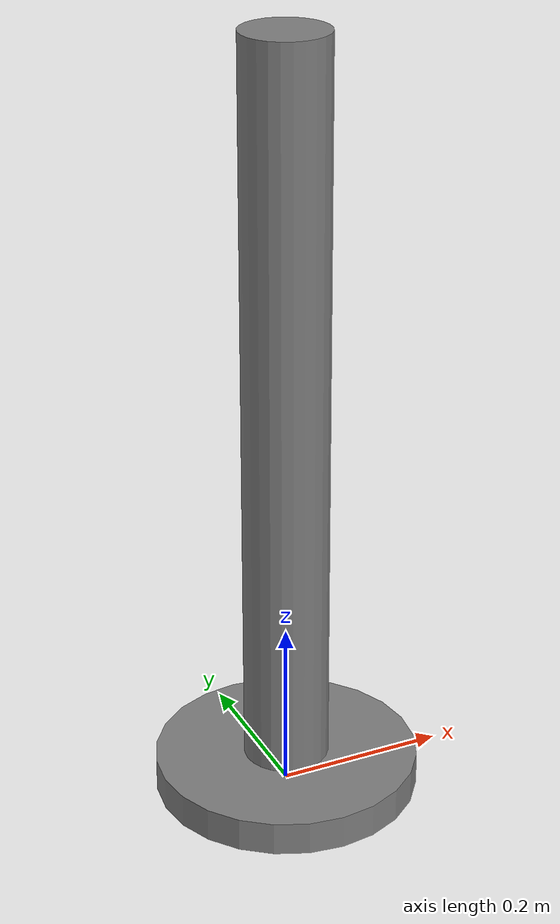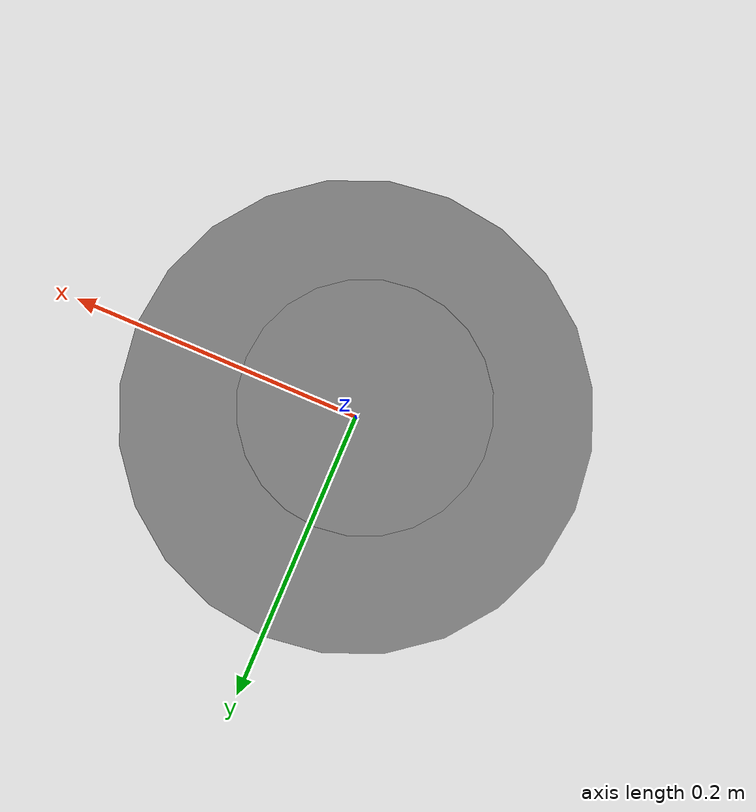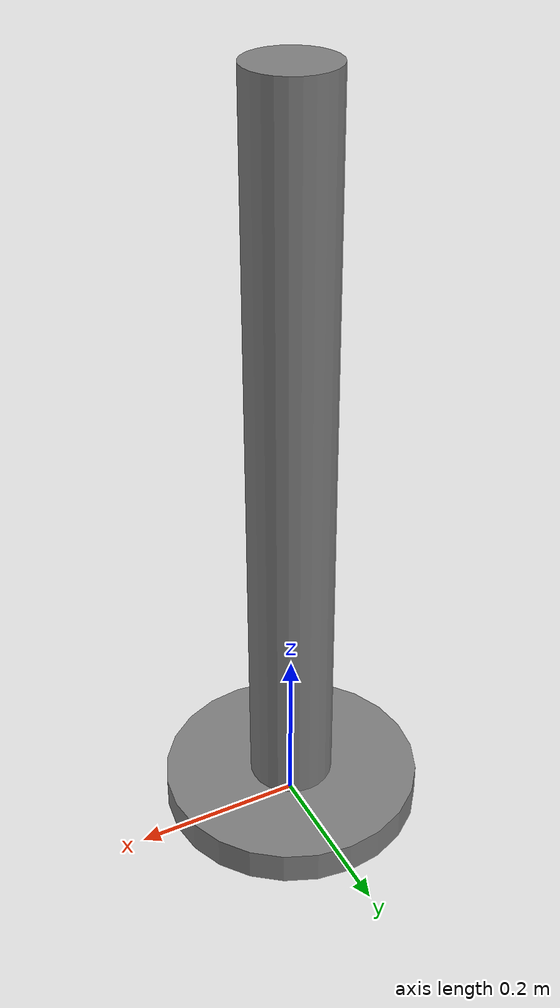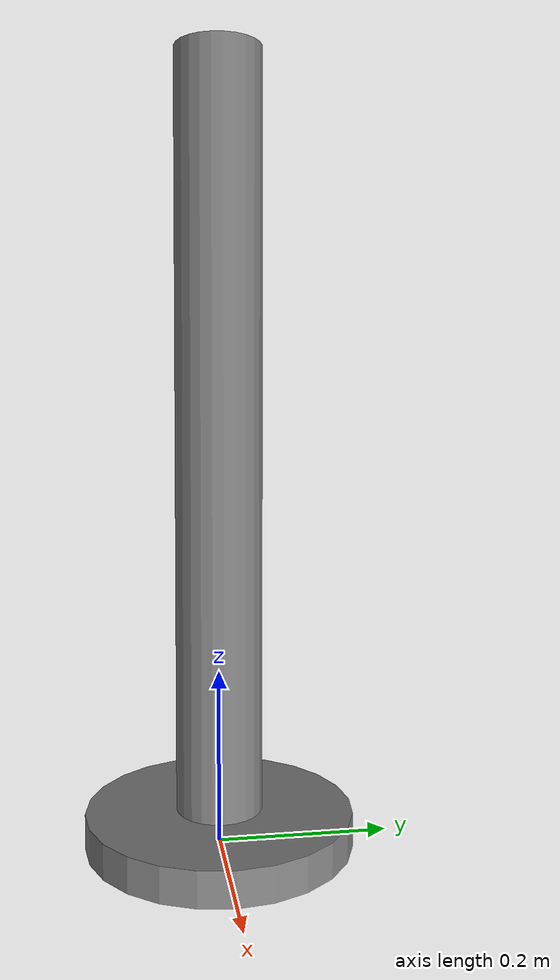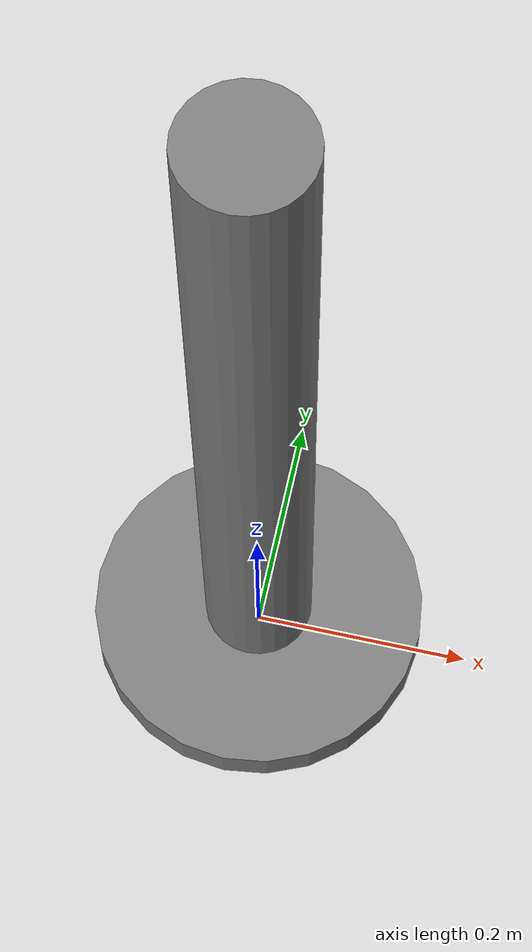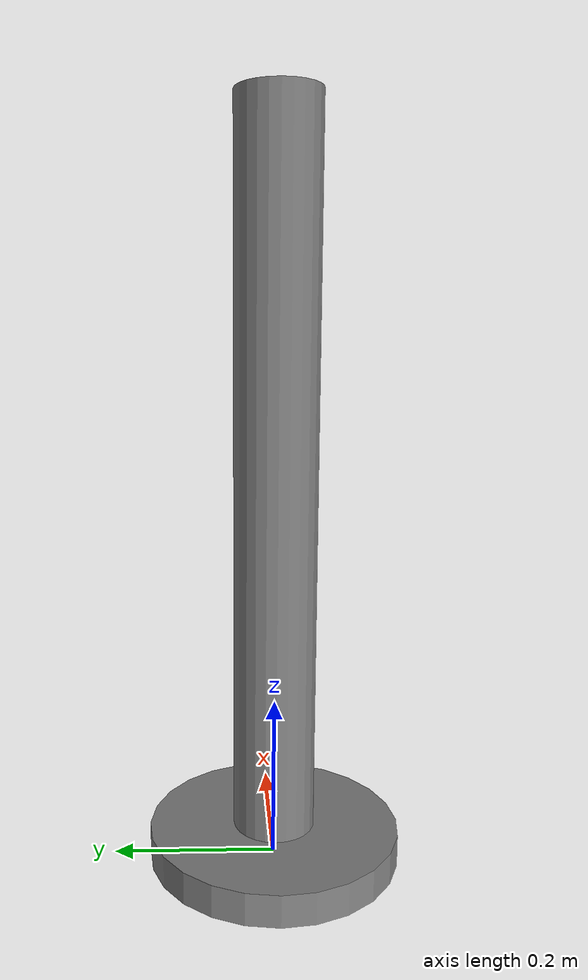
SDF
<?xml version="1.0" ?>
<sdf version='1.6'>
  <model name="barrier_with_belt_1">
    <static>true</static> <!-- Static model -->

    <!-- Base Plate_1 -->
    <link name="base1">
      <visual name="base1_visual">
        <geometry>
          <cylinder>
            <radius>0.155</radius> <!-- Diameter: 31 cm -->
            <length>0.04</length> <!-- Thickness: 4 cm -->
          </cylinder>
        </geometry>
        <material>
          <ambient>0.5 0.5 0.5 1</ambient> <!-- Grey color -->
        </material>
      </visual>
      <collision name="base1_collision">
        <geometry>
          <cylinder>
            <radius>0.155</radius>
            <length>0.04</length>
          </cylinder>
        </geometry>
      </collision>
      <pose>0 0 0.02 0 0 0</pose> <!-- Base at ground level -->
    </link>

    <!-- Pillar_1 -->
    <link name="cylinder1">
      <visual name="cylinder1_visual">
        <geometry>
          <cylinder>
            <radius>0.05</radius> <!-- Radius: 5 cm -->
            <length>0.89</length> <!-- Height: 89 cm -->
          </cylinder>
        </geometry>
        <material>
          <ambient>0.5 0.5 0.5 1</ambient> <!-- Grey color -->
        </material>
      </visual>
      <collision name="cylinder1_collision">
        <geometry>
          <cylinder>
            <radius>0.05</radius>
            <length>0.89</length>
          </cylinder>
        </geometry>
      </collision>
      <pose>0 0 0.46 0 0 0</pose> <!-- Placed on top of the base -->
    </link>

    <!-- Fixed Joints -->
    <joint name="cylinder1_to_base_1" type="fixed">
      <parent>base1</parent>
      <child>cylinder1</child>
    </joint>
  </model>
</sdf>
